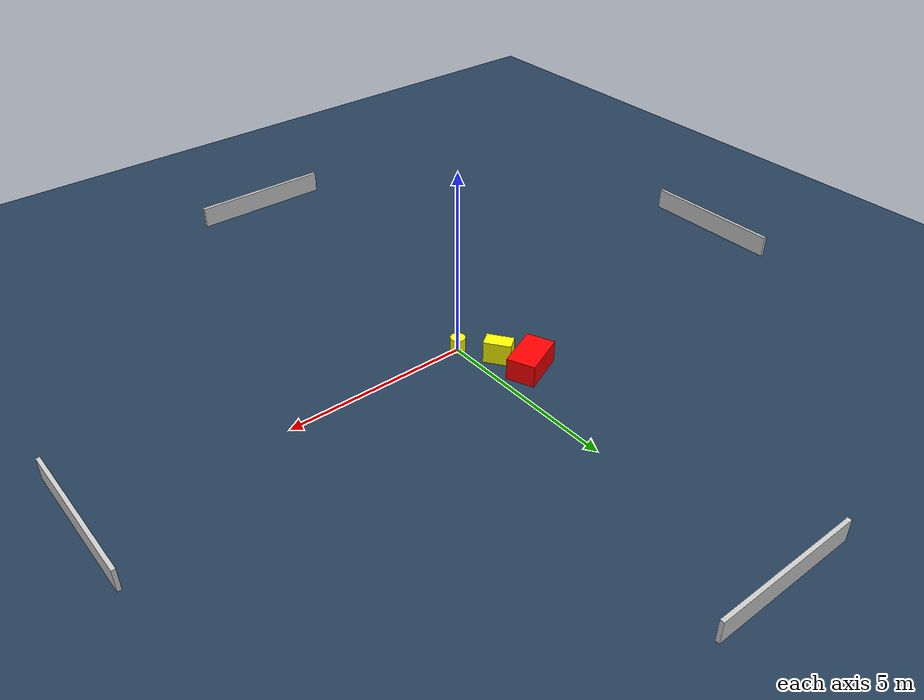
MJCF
<?xml version="1.0" ?>
<mujoco model="generated_environment">
  <option timestep="0.01" integrator="RK4" cone="elliptic"/>
  <default>
    <geom density="1"/>
  </default>
  <asset>
    <texture builtin="gradient" height="3072" name="skybox" rgb1="0.3 0.5 0.7" rgb2="0 0 0" type="skybox" width="512"/>
    <texture builtin="checker" height="300" name="groundplane" rgb1="0.2 0.3 0.4" rgb2="0.1 0.2 0.3" type="2d" width="300"/>
    <material name="groundplane" reflectance="0.2" texrepeat="5 5" texture="groundplane"/>
  </asset>
  <worldbody>
    <light dir="0 0 -1" directional="true" pos="0 0 1.5"/>
    <geom condim="3" friction="0.5 0.005 0.001" material="groundplane" name="floor" pos="0 0 0" size="0 0 0.05" type="plane"/>
    <body name="walls">
      <geom name="wall_1" condim="4" pos="-10.0 0.0 0.3" rgba="0.800000011920929 0.800000011920929 0.800000011920929 1.0" size="0.05 2.0 0.3" type="box"/>
      <geom name="wall_2" condim="4" pos="10.0 0.0 0.3" rgba="0.800000011920929 0.800000011920929 0.800000011920929 1.0" size="0.05 2.0 0.3" type="box"/>
      <geom name="wall_3" condim="4" pos="0.0 -10.0 0.3" rgba="0.800000011920929 0.800000011920929 0.800000011920929 1.0" size="2.0 0.05 0.3" type="box"/>
      <geom name="wall_4" condim="4" pos="0.0 10.0 0.3" rgba="0.800000011920929 0.800000011920929 0.800000011920929 1.0" size="2.0 0.05 0.3" type="box"/>
    </body>
    <body name="robot">
      <joint name="joint_x" type="slide" pos="0 0 0" axis="1 0 0"/>
      <joint name="joint_y" type="slide" pos="0 0 0" axis="0 1 0"/>
      <geom name="robot" type="cylinder" pos="0.0 0.0 0.2" size="0.2 0.2 0.0" mass="5.0" friction="1.0 0.005 0.0001" condim="4" rgba="1.0 1.0 0.0 1.0"/>
    </body>
    <body name="obstacle_1_movable">
      <geom name="obstacle_1_movable" condim="4" pos="-0.5394033539564005 0.9678846667180544 0.3" euler="0 0 125.21863619313383" friction="0.0 0.005 0.001" rgba="1.0 1.0 0.0 1.0" size="0.3605310913589771 0.20693065811133882 0.3" type="box" mass="0.1"/>
      <joint type="free"/>
    </body>
    <body name="obstacle_2_static">
      <geom name="obstacle_2_static" condim="4" pos="-0.8777337831480917 1.7888844148227998 0.3" euler="0 0 23.308610359213148" friction="0.0 0.005 0.001" rgba="1.0 0.0 0.0 1.0" size="0.613737547853251 0.37893722813331554 0.3" type="box"/>
    </body>
  </worldbody>
  <actuator>
    <motor name="actuator_x" joint="joint_x" gear="1" ctrlrange="-1 1"/>
    <motor name="actuator_y" joint="joint_y" gear="1" ctrlrange="-1 1"/>
  </actuator>
</mujoco>
